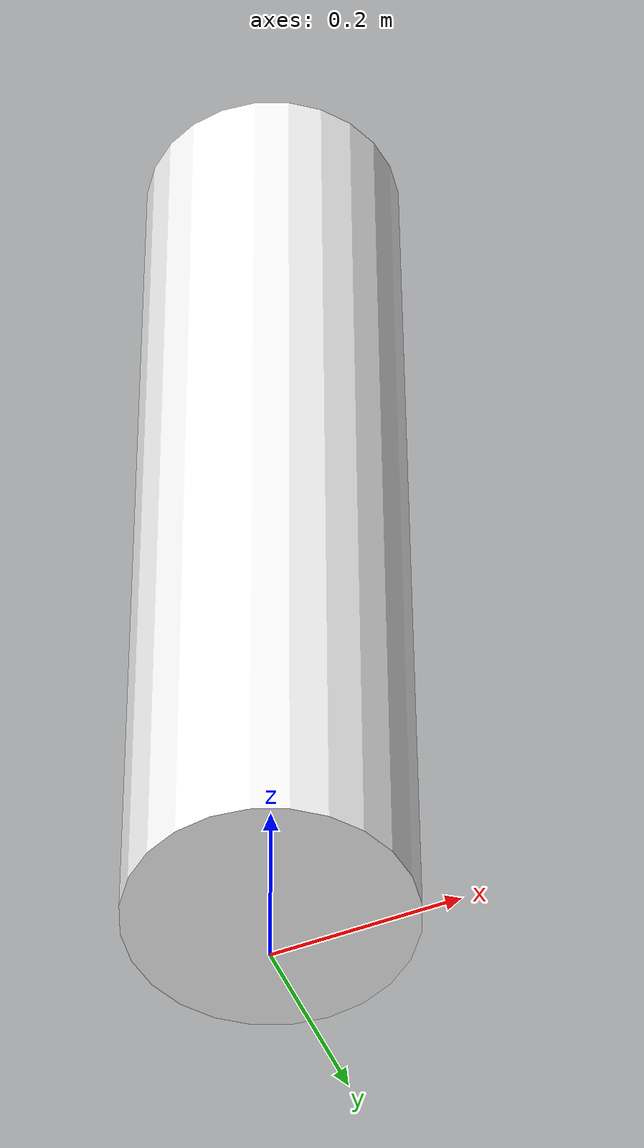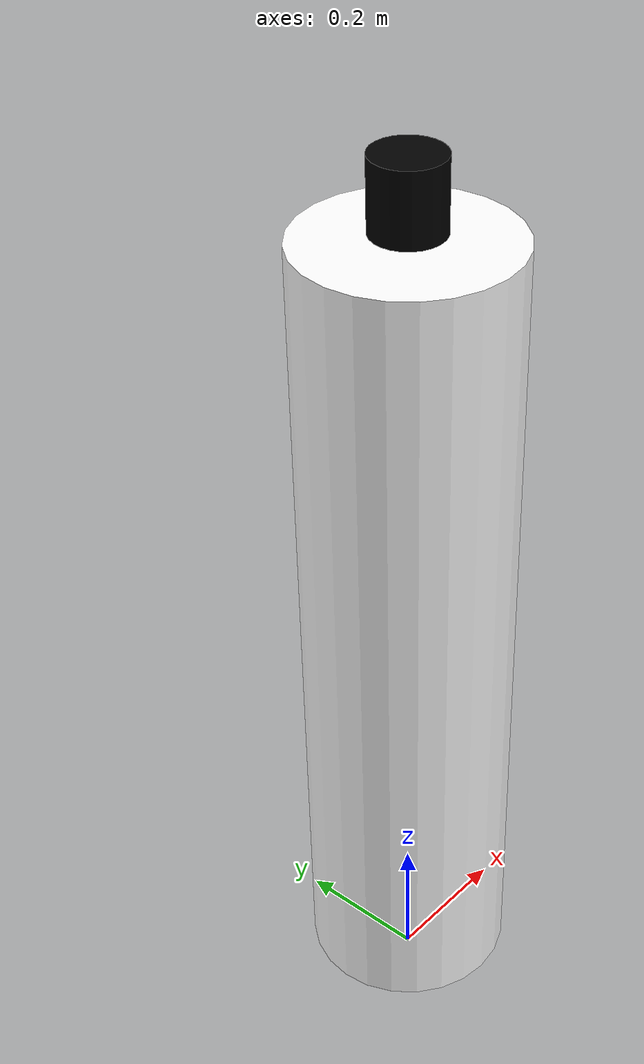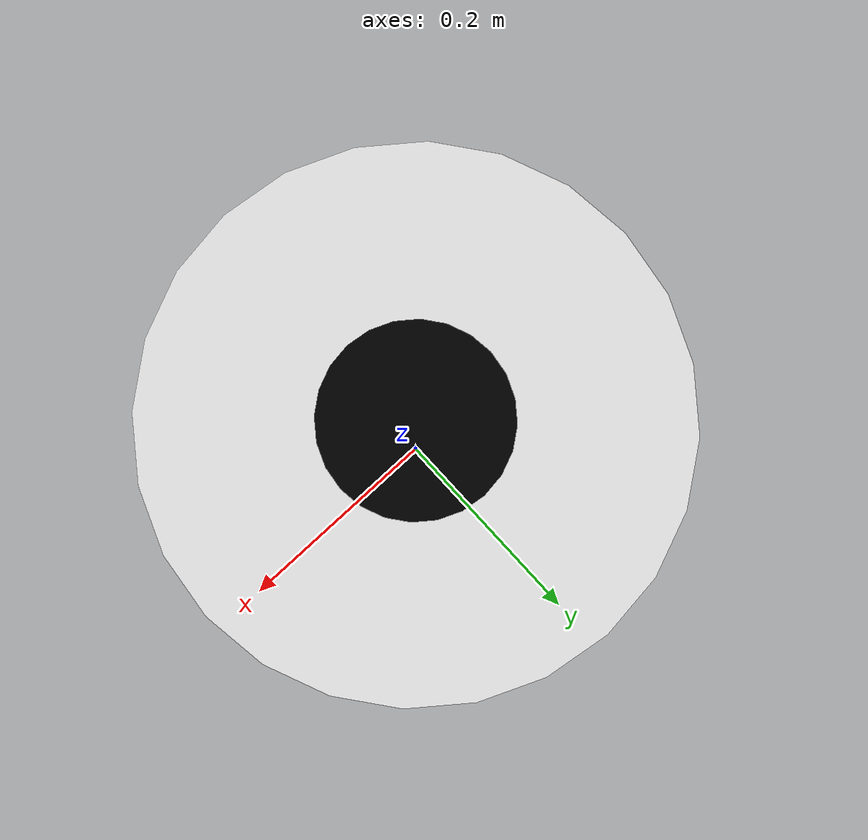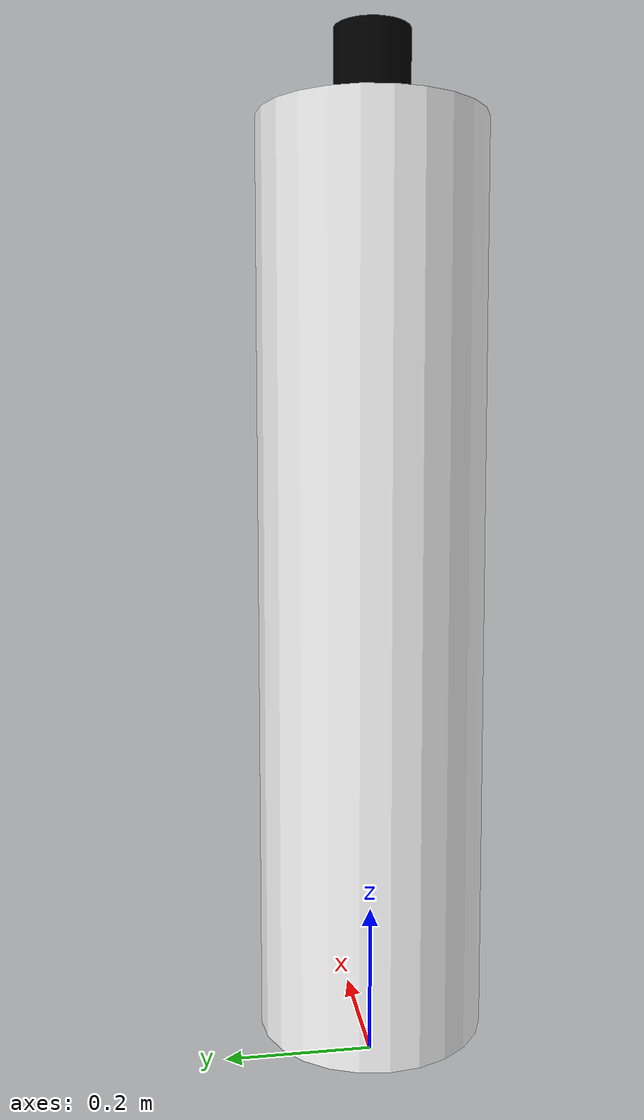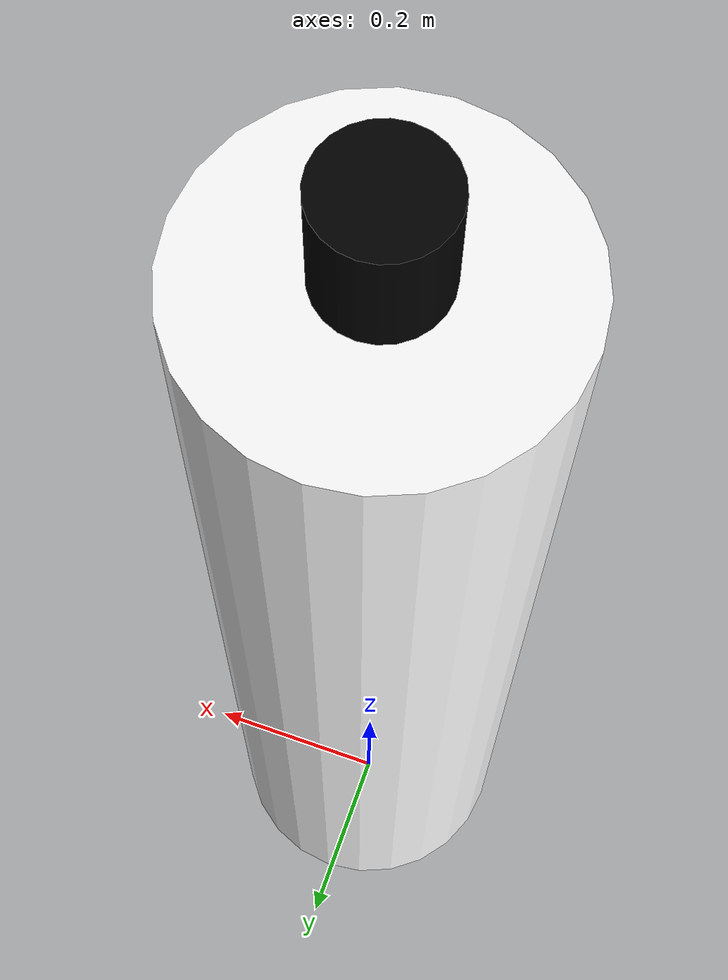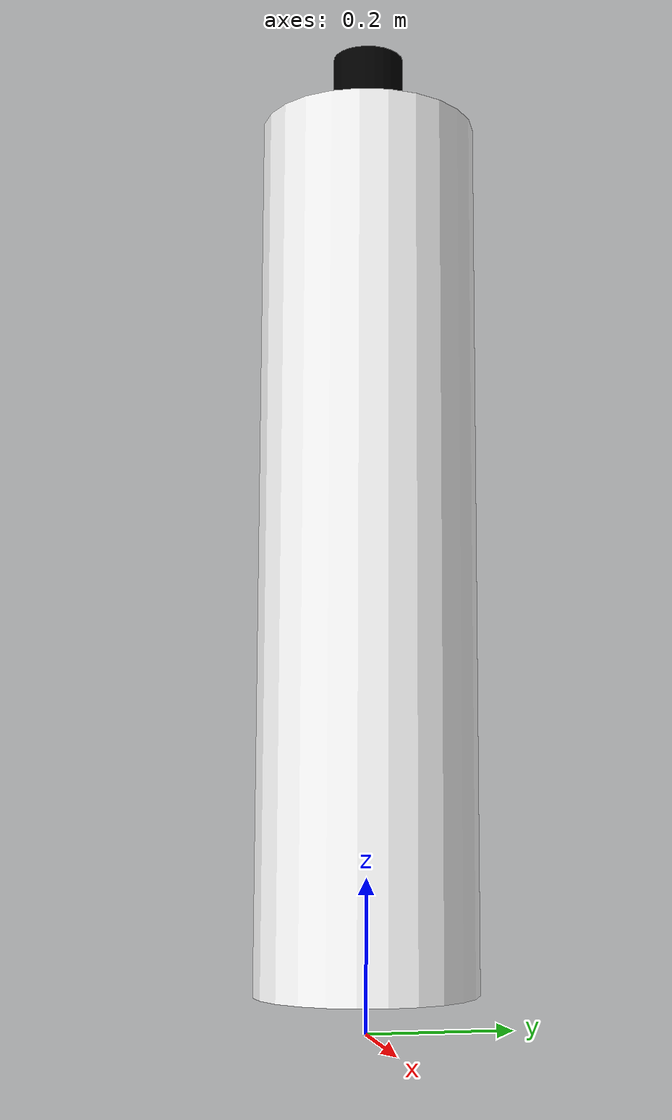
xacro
<?xml version="1.0"?>
<robot xmlns:xacro="http://www.ros.org/wiki/xacro" name="f1_humanoid">

    <xacro:macro name="cylinder_inertia" params="m r h">
        <inertial>
            <mass value="${m}"/>
            <inertia ixx="${m*(3*r*r+h*h)/12}" ixy="0" ixz="0"
                     iyy="${m*(3*r*r+h*h)/12}" iyz="0"
                     izz="${m*r*r/2}" />
        </inertial>
    </xacro:macro>

    <xacro:macro name="box_inertia" params="m x y z">
        <inertial>
            <mass value="${m}"/>
            <inertia ixx="${m*(y*y+z*z)/12}" ixy="0" ixz="0"
                     iyy="${m*(x*x+z*z)/12}" iyz="0"
                     izz="${m*(x*x+y*y)/12}" />
        </inertial>
    </xacro:macro>

    <link name="base_footprint"/>

    <joint name="base_joint" type="fixed">
        <parent link="base_footprint"/>
        <child link="base_link"/>
        <origin xyz="0 0 0.65" rpy="0 0 0"/>
    </joint>

    <link name="base_link">
        <visual>
            <geometry>
                <cylinder length="1.2" radius="0.15"/>
            </geometry>
            <origin rpy="0 0 0" xyz="0 0 0"/>
            <material name="white">
                 <color rgba="1 1 1 1"/>
            </material>
        </visual>
        <collision>
            <geometry>
                <cylinder length="1.2" radius="0.15"/>
            </geometry>
            <origin rpy="0 0 0" xyz="0 0 0"/>
        </collision>
        <xacro:cylinder_inertia m="15.0" r="0.15" h="1.2"/>
    </link>

    <link name="lidar_link">
        <visual>
            <geometry>
                <cylinder radius="0.05" length="0.1"/>
            </geometry>
            <material name="black">
                <color rgba="0 0 0 1"/>
            </material>
        </visual>
        <collision>
            <geometry>
                <cylinder radius="0.05" length="0.1"/>
            </geometry>
        </collision>
        <xacro:cylinder_inertia m="0.2" r="0.05" h="0.1"/>
    </link>

    <joint name="lidar_joint" type="fixed">
        <parent link="base_link"/>
        <child link="lidar_link"/>
        <origin xyz="0 0 0.66" rpy="0 0 0"/>
    </joint>

    <link name="imu_link">
        <visual>
            <geometry>
                <box size="0.05 0.05 0.02"/>
            </geometry>
            <material name="blue">
                <color rgba="0 0 1 1"/>
            </material>
        </visual>
        <xacro:box_inertia m="0.1" x="0.05" y="0.05" z="0.02"/>
    </link>

    <joint name="imu_joint" type="fixed">
        <parent link="base_link"/>
        <child link="imu_link"/>
        <origin xyz="0 0 0.66" rpy="0 0 0"/>
    </joint>

    <gazebo reference="base_link">
        <material>Gazebo/White</material>
        <mu1>0.0</mu1>
        <mu2>0.0</mu2>
        <kp>1000000.0</kp>
        <kd>1.0</kd>
    </gazebo>

    <gazebo reference="lidar_link">
      <sensor type="ray" name="standard_3d_lidar">
        <pose>0 0 0 0 0 0</pose>
        <visualize>false</visualize>
        <update_rate>10</update_rate>
        <ray>
          <scan>
            <horizontal>
                <samples>360</samples>
                <resolution>1</resolution>
                <min_angle>-3.1415926535</min_angle>
                <max_angle>3.1415926535</max_angle>
            </horizontal>
            <vertical>

                <samples>64</samples> <resolution>1</resolution>
                <min_angle>-0.90757</min_angle>
                <max_angle>0.12217</max_angle>

            </vertical>
          </scan>
          <range>
            <min>0.35</min>
            <max>30.0</max>
            <resolution>0.01</resolution>
          </range>
        </ray>
        <plugin name="lidar_controller" filename="libgazebo_ros_ray_sensor.so">
          <ros>
            <remapping>~/out:=/sim/lidar</remapping>
          </ros>
          <output_type>sensor_msgs/PointCloud2</output_type>
          <frame_name>lidar_link</frame_name>
        </plugin>
      </sensor>
    </gazebo>

    <gazebo reference="imu_link">
        <gravity>true</gravity>
        <sensor name="imu_sensor" type="imu">
            <always_on>true</always_on>
            <update_rate>200</update_rate>
            <visualize>true</visualize>
            <plugin filename="libgazebo_ros_imu_sensor.so" name="imu_plugin">
                <ros>
                    <namespace>/</namespace>
                    <remapping>~/out:=imu/data</remapping>
                </ros>
            </plugin>
        </sensor>
    </gazebo>

    <gazebo>
        <plugin name="object_controller" filename="libgazebo_ros_planar_move.so">
            <commandTopic>cmd_vel</commandTopic>
            <odometryTopic>odom</odometryTopic>
            <odometryFrame>odom</odometryFrame>
            <odometryRate>20.0</odometryRate>
            <robotBaseFrame>base_footprint</robotBaseFrame>
            <publish_odom_tf>true</publish_odom_tf>
        </plugin>
    </gazebo>

</robot>
